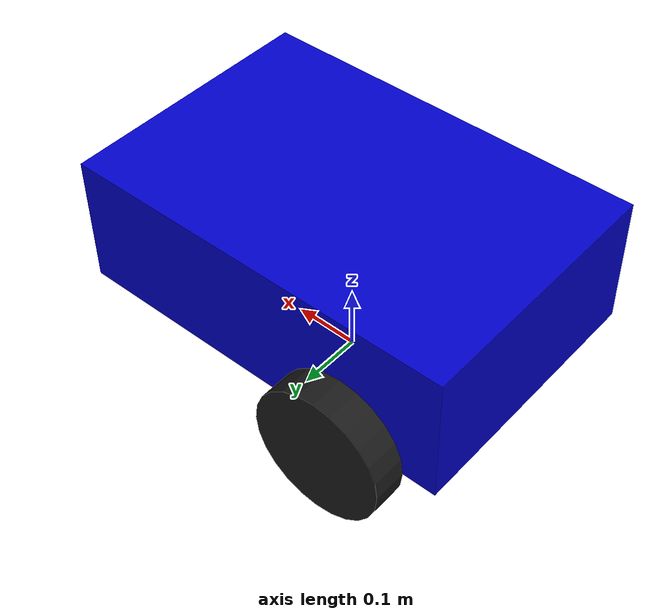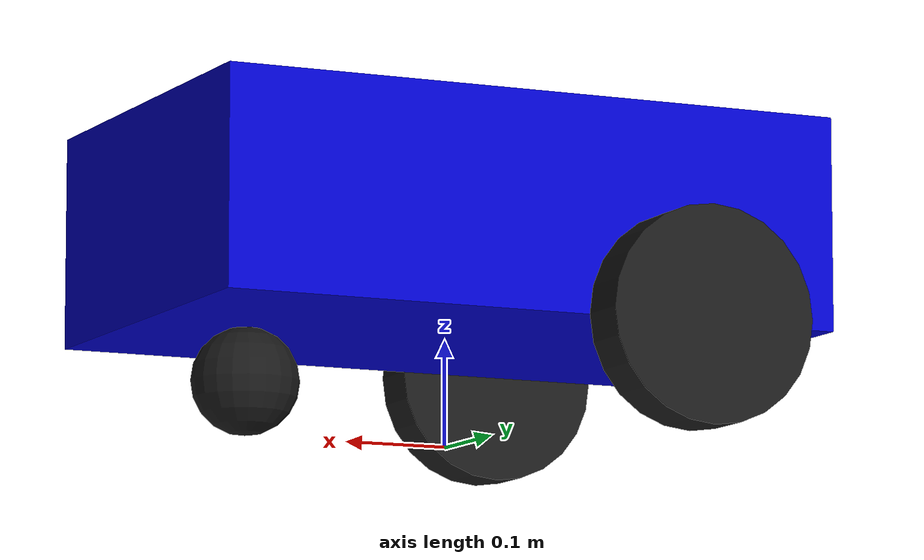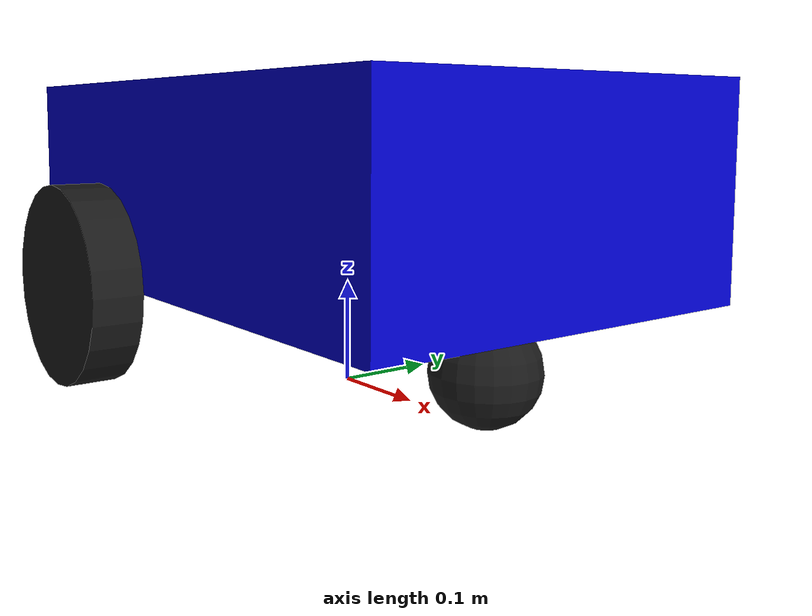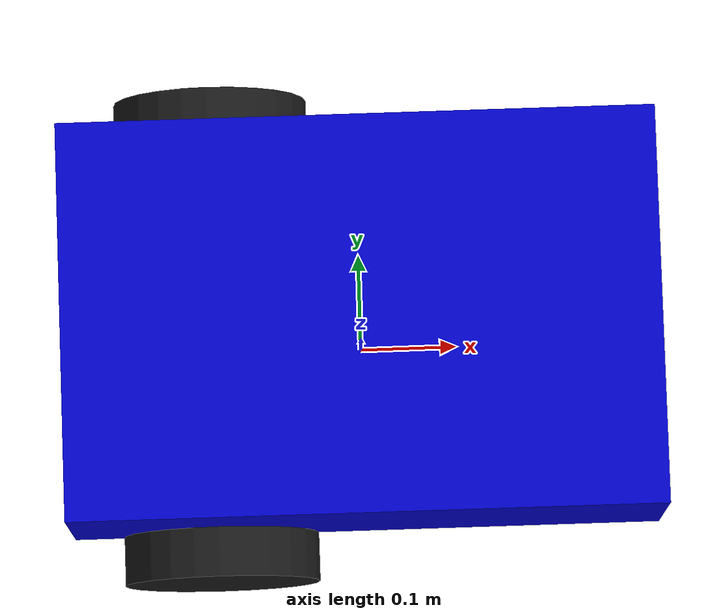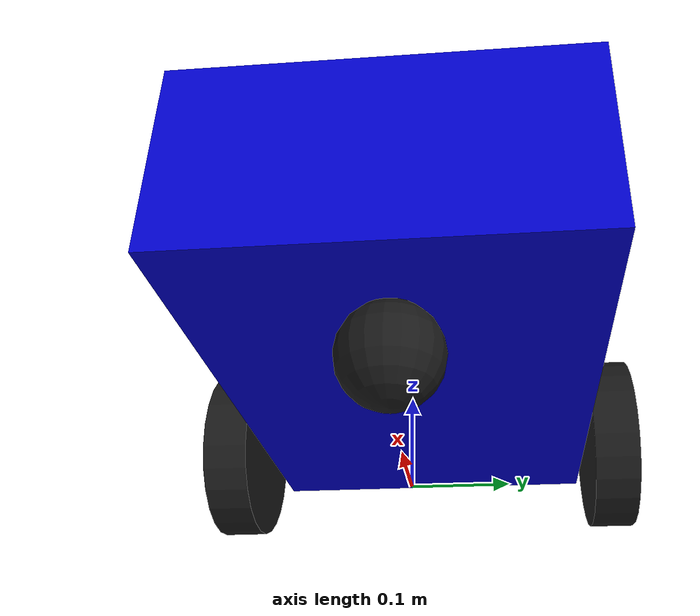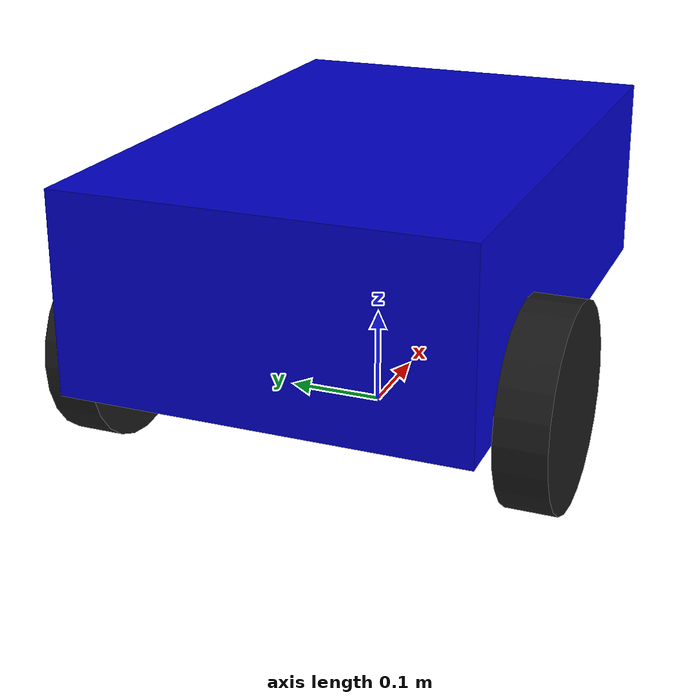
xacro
<?xml version="1.0"?>
<robot xmlns:xacro="http://www.ros.org/wiki/xacro" name="resqtether">

  <xacro:property name="base_width" value="0.4" />
  <xacro:property name="base_length" value="0.6" />
  <xacro:property name="base_height" value="0.2" />
  <xacro:property name="wheel_radius" value="0.1" />
  <xacro:property name="wheel_width" value="0.05" />

  <link name="base_footprint"/>

  <joint name="base_joint" type="fixed">
    <parent link="base_footprint"/>
    <child link="base_link"/>
    <origin xyz="0 0 ${wheel_radius}" rpy="0 0 0"/>
  </joint>

  <link name="base_link">
    <visual>
      <origin xyz="0 0 ${base_height/2}" rpy="0 0 0"/>
      <geometry>
        <box size="${base_length} ${base_width} ${base_height}"/>
      </geometry>
      <material name="blue">
        <color rgba="0.0 0.0 0.8 1.0"/>
      </material>
    </visual>
    <collision>
      <origin xyz="0 0 ${base_height/2}" rpy="0 0 0"/>
      <geometry>
        <box size="${base_length} ${base_width} ${base_height}"/>
      </geometry>
    </collision>
    <inertial>
      <origin xyz="0 0 ${base_height/2}" rpy="0 0 0"/>
      <mass value="5.0"/>
      <inertia ixx="0.08" ixy="0.0" ixz="0.0" iyy="0.16" iyz="0.0" izz="0.2"/>
    </inertial>
  </link>

  <link name="left_wheel">
    <visual>
      <geometry>
        <cylinder radius="${wheel_radius}" length="${wheel_width}"/>
      </geometry>
      <material name="black">
        <color rgba="0.1 0.1 0.1 1.0"/>
      </material>
    </visual>
    <collision>
      <geometry>
        <cylinder radius="${wheel_radius}" length="${wheel_width}"/>
      </geometry>
    </collision>
    <inertial>
      <mass value="0.5"/>
      <inertia ixx="0.0013" ixy="0.0" ixz="0.0" iyy="0.0013" iyz="0.0" izz="0.0025"/>
    </inertial>
  </link>

  <joint name="left_wheel_joint" type="continuous">
    <parent link="base_link"/>
    <child link="left_wheel"/>
    <origin xyz="-0.15 ${base_width/2 + wheel_width/2} 0" rpy="-1.5708 0 0"/>
    <axis xyz="0 0 1"/>
  </joint>

  <link name="right_wheel">
    <visual>
      <geometry>
        <cylinder radius="${wheel_radius}" length="${wheel_width}"/>
      </geometry>
      <material name="black"/>
    </visual>
    <collision>
      <geometry>
        <cylinder radius="${wheel_radius}" length="${wheel_width}"/>
      </geometry>
    </collision>
    <inertial>
      <mass value="0.5"/>
      <inertia ixx="0.0013" ixy="0.0" ixz="0.0" iyy="0.0013" iyz="0.0" izz="0.0025"/>
    </inertial>
  </link>

  <joint name="right_wheel_joint" type="continuous">
    <parent link="base_link"/>
    <child link="right_wheel"/>
    <origin xyz="-0.15 -${base_width/2 + wheel_width/2} 0" rpy="-1.5708 0 0"/>
    <axis xyz="0 0 1"/>
  </joint>

  <link name="caster_wheel">
    <visual>
      <geometry>
        <sphere radius="${wheel_radius/2}"/>
      </geometry>
      <material name="black"/>
    </visual>
    <collision>
      <geometry>
        <sphere radius="${wheel_radius/2}"/>
      </geometry>
    </collision>
    <inertial>
      <mass value="0.2"/>
      <inertia ixx="0.0001" ixy="0.0" ixz="0.0" iyy="0.0001" iyz="0.0" izz="0.0001"/>
    </inertial>
  </link>

  <joint name="caster_wheel_joint" type="fixed">
    <parent link="base_link"/>
    <child link="caster_wheel"/>
    <origin xyz="0.2 0 -${wheel_radius/2}" rpy="0 0 0"/>
  </joint>

  <gazebo reference="caster_wheel">
    <mu1>0.001</mu1>
    <mu2>0.001</mu2>
  </gazebo>

  <gazebo reference="base_link">
    <material>Gazebo/Blue</material>
  </gazebo>

  <gazebo reference="left_wheel">
    <material>Gazebo/Black</material>
  </gazebo>

  <gazebo reference="right_wheel">
    <material>Gazebo/Black</material>
  </gazebo>

  <link name="laser_link">
    <visual>
      <geometry>
        <cylinder radius="0.05" length="0.05"/>
      </geometry>
      <material name="black"/>
    </visual>
    <collision>
      <geometry>
        <cylinder radius="0.05" length="0.05"/>
      </geometry>
    </collision>
    <inertial>
      <mass value="0.1"/>
      <inertia ixx="0.0001" ixy="0" ixz="0" iyy="0.0001" iyz="0" izz="0.0001"/>
    </inertial>
  </link>

  <joint name="laser_joint" type="fixed">
    <parent link="base_link"/>
    <child link="laser_link"/>
    <origin xyz="0 0 ${base_height/2 + 0.025}" rpy="0 0 0"/>
  </joint>

  <gazebo reference="laser_link">
    <material>Gazebo/Black</material>
    <sensor name="lidar_sensor" type="gpu_lidar">
      <pose>0 0 0 0 0 0</pose>
      <always_on>true</always_on>
      <visualize>true</visualize>
      <update_rate>10</update_rate>
      <topic>scan</topic>
      <gz_frame_id>laser_link</gz_frame_id>
      <lidar>
        <scan>
          <horizontal>
            <samples>360</samples>
            <resolution>1.0</resolution>
            <min_angle>-3.14159</min_angle>
            <max_angle>3.14159</max_angle>
          </horizontal>
        </scan>
        <range>
          <min>0.12</min>
          <max>12.0</max>
          <resolution>0.015</resolution>
        </range>
        <noise>
          <type>gaussian</type>
          <mean>0.0</mean>
          <stddev>0.01</stddev>
        </noise>
      </lidar>
    </sensor>
  </gazebo>

  <gazebo>
    <plugin filename="gz-sim-diff-drive-system" name="gz::sim::systems::DiffDrive">
      <left_joint>left_wheel_joint</left_joint>
      <right_joint>right_wheel_joint</right_joint>
      <wheel_separation>${base_width + wheel_width}</wheel_separation>
      <wheel_radius>${wheel_radius}</wheel_radius>
      <max_linear_acceleration>1.0</max_linear_acceleration>
      <min_linear_acceleration>-1.0</min_linear_acceleration>
      <max_angular_acceleration>2.0</max_angular_acceleration>
      <min_angular_acceleration>-2.0</min_angular_acceleration>
      <max_linear_velocity>1.0</max_linear_velocity>
      <min_linear_velocity>-1.0</min_linear_velocity>
      <max_angular_velocity>2.0</max_angular_velocity>
      <min_angular_velocity>-2.0</min_angular_velocity>
      <odom_publish_frequency>50</odom_publish_frequency>
      <topic>cmd_vel</topic>
      <odom_topic>odom</odom_topic>
      <tf_topic>tf</tf_topic>
      <frame_id>odom</frame_id>
      <child_frame_id>base_footprint</child_frame_id>
    </plugin>
  </gazebo>
</robot>
